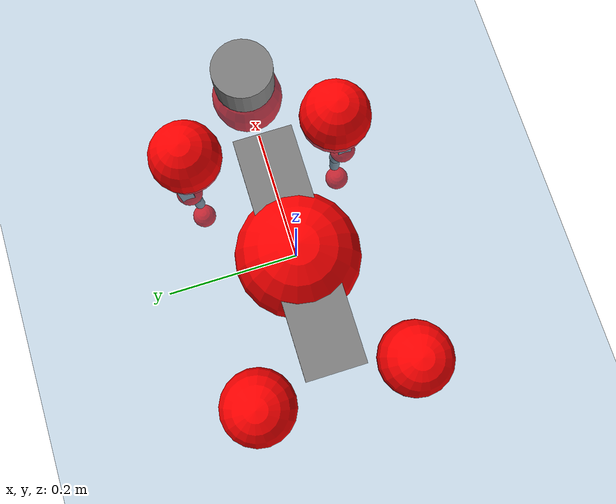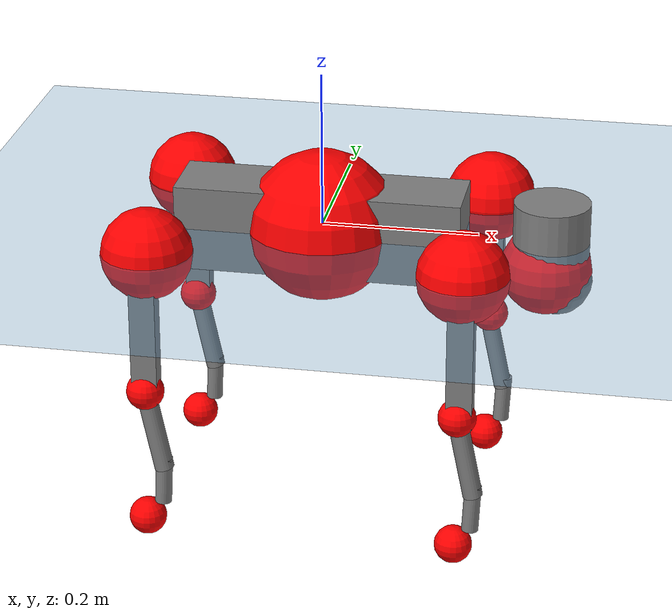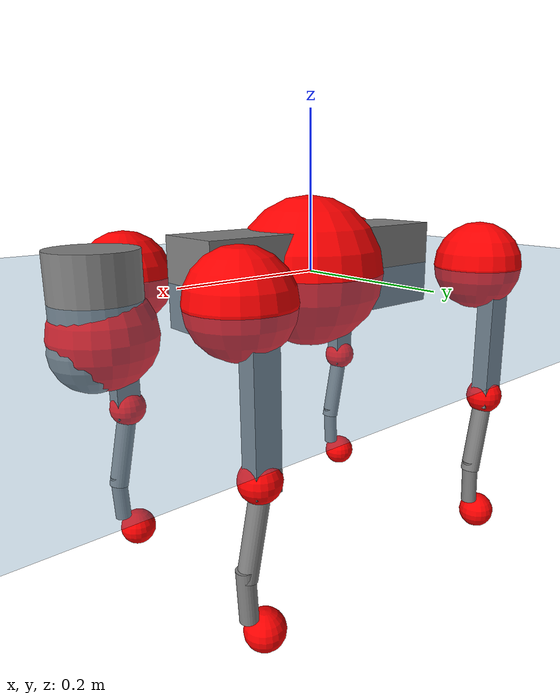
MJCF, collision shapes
<mujoco model="go2">
  <compiler angle="radian" assetdir="assets" balanceinertia="true" inertiafromgeom="false"/>

  <option timestep="0.005" density="1.2" viscosity="2e-05"/>

  <size nkey="1"/>

  <visual>
    <quality shadowsize="8192"/>
    <map shadowclip="0.5"/>
  </visual>

  <default>
    <default class="/">
      <geom contype="0" conaffinity="0" group="1" solref="-1000 -80"/>
      <site size="0.01 0.005 0.005" group="5"/>
      <general forcelimited="true" biastype="affine" gainprm="20" biasprm="0 -20 -0.5"/>
      <default class="go2">
        <joint armature="0.01" damping="0.01" frictionloss="0.2"/>
        <geom condim="1" margin="0.001"/>
        <default class="visual">
          <geom type="mesh" group="2"/>
        </default>
        <default class="collision">
          <geom group="3"/>
          <default class="foot">
            <geom size="0.022 0 0" condim="6" priority="1" friction="0.8 0.02 0.01" solimp="0.015 1 0.022"/>
          </default>
        </default>
        <default class="reward_collision_sphere">
          <geom group="5" rgba="1 0 0 1"/>
        </default>
      </default>
    </default>
  </default>

  <asset>
    <texture type="skybox" colorspace="auto" name="//unnamed_texture_0" builtin="gradient" rgb1="0.95 0.95 0.95" rgb2="0.95 0.95 0.95" width="100" height="600"/>
    <texture type="2d" colorspace="auto" name="texplane" builtin="checker" rgb1="0.345 0.575 0.748" rgb2="0.345 0.575 0.748" markrgb="1 1 1" width="512" height="512"/>
    <material name="MatPlane" class="/" texture="texplane" texuniform="true" texrepeat="2 2" specular="0.9"/>
    <material name="metal" class="/" rgba="0.9 0.95 0.95 1"/>
    <material name="black" class="/" rgba="0 0 0 1"/>
    <material name="white" class="/"/>
    <material name="gray" class="/" rgba="0.671705 0.692426 0.77427 1"/>
    <mesh name="base_0" class="/" file="base_0.obj"/>
    <mesh name="base_1" class="/" file="base_1.obj"/>
    <mesh name="base_2" class="/" file="base_2.obj"/>
    <mesh name="base_3" class="/" file="base_3.obj"/>
    <mesh name="base_4" class="/" file="base_4.obj"/>
    <mesh name="hip_0" class="/" file="hip_0.obj"/>
    <mesh name="hip_1" class="/" file="hip_1.obj"/>
    <mesh name="thigh_0" class="/" file="thigh_0.obj"/>
    <mesh name="thigh_1" class="/" file="thigh_1.obj"/>
    <mesh name="thigh_mirror_0" class="/" file="thigh_mirror_0.obj"/>
    <mesh name="thigh_mirror_1" class="/" file="thigh_mirror_1.obj"/>
    <mesh name="calf_0" class="/" file="calf_0.obj"/>
    <mesh name="calf_1" class="/" file="calf_1.obj"/>
    <mesh name="calf_mirror_0" class="/" file="calf_mirror_0.obj"/>
    <mesh name="calf_mirror_1" class="/" file="calf_mirror_1.obj"/>
    <mesh name="foot" class="/" file="foot.obj"/>
  </asset>

  <worldbody>
    <geom name="floor" class="/" size="100 100 0.125" type="plane" group="0" material="MatPlane"/>
    <light name="toplight_shadow" class="/" pos="0 0 5" dir="0.0990148 0.0990148 -0.990148" type="directional" ambient="0.04 0.04 0.04" diffuse="0.55 0.55 0.55" specular="0.12 0.12 0.12"/>
    <light name="toplight_fill" class="/" pos="0 0 5" dir="0.0990148 0.0990148 -0.990148" type="directional" castshadow="false" ambient="0.04 0.04 0.04" diffuse="0.3 0.3 0.3" specular="0.08 0.08 0.08"/>
    <body name="trunk" childclass="go2" pos="0.000276869 -0.00266326 -0.000372708" quat="1 1.23794e-05 -1.95866e-05 6.08857e-07">
      <inertial pos="0.0214614 -0.00289725 -0.00463965" quat="-0.00913147 0.709065 0.00122411 0.705083" mass="6.26763" diaginertia="0.120105 0.116904 0.0109291"/>
      <joint name="//unnamed_joint_0" type="free" armature="0" damping="0" frictionloss="0"/>
      <geom name="//unnamed_geom_1" class="visual" material="black" mesh="base_0"/>
      <geom name="//unnamed_geom_2" class="visual" material="black" mesh="base_1"/>
      <geom name="//unnamed_geom_3" class="visual" material="black" mesh="base_2"/>
      <geom name="//unnamed_geom_4" class="visual" material="white" mesh="base_3"/>
      <geom name="//unnamed_geom_5" class="visual" material="gray" mesh="base_4"/>
      <geom name="trunk_1" class="collision" size="0.183083 0.0455031 0.0554797" type="box"/>
      <geom name="trunk_2" class="collision" size="0.0486664 0.0437998" pos="0.292855 0 0.00852136" type="cylinder"/>
      <geom name="trunk_3" class="collision" size="0.0457464" pos="0.301075 0 -0.0511282"/>
      <geom name="//unnamed_geom_9" class="reward_collision_sphere" size="0.0973328"/>
      <geom name="//unnamed_geom_10" class="reward_collision_sphere" size="0.0583997" pos="0.287717 0 -0.0383461"/>
      <site name="imu" pos="-0.013294 0.00845478 0.0227605" size="0.00973328"/>
      <camera name="track" pos="0 -2.08058 0" quat="0.707107 0.707107 0 0" mode="trackcom"/>
      <camera name="ego_camera" pos="0.320599 0 0.0383461" quat="-0.5 -0.5 0.5 0.5"/>
      <body name="FL_hip" pos="0.200458 0.0506534 0.00259385" quat="0.999999 -0.00114584 0.000223148 0.000369151">
        <inertial pos="-0.00452059 0.00229778 0.00139211" quat="0.498005 0.499679 0.506551 0.495699" mass="0.600342" diaginertia="0.00101126 0.000692709 0.00021578"/>
        <joint name="FL_hip_joint" pos="0 0 0" axis="0.999996 0.000368666 -0.00289333" stiffness="0.0145902" range="-1.00499 1.07566" armature="0.00949895" damping="0" frictionloss="0.216986"/>
        <geom name="//unnamed_geom_11" class="visual" material="metal" mesh="hip_0"/>
        <geom name="//unnamed_geom_12" class="visual" material="gray" mesh="hip_1"/>
        <geom name="//unnamed_geom_13" class="collision" size="0.0447731 0.0194666" pos="0 0.0832231 0" quat="0.707107 0.707107 0 0" type="cylinder"/>
        <geom name="//unnamed_geom_14" class="reward_collision_sphere" size="0.0583997" pos="0 0.0728202 0"/>
        <body name="FL_thigh" pos="2.64503e-05 0.101524 0.00107945" quat="0.999999 -0.000106871 0.00131601 0.000404892">
          <inertial pos="-0.0014686 -0.0211969 -0.0288847" quat="0.834786 0.0887467 -0.0110975 0.543261" mass="1.06131" diaginertia="0.00680106 0.00715903 0.000398664"/>
          <joint name="FL_thigh_joint" pos="0 0 0" axis="0.0186901 0.999825 -0.000545125" stiffness="0.00644737" range="-1.54492 3.54434" armature="0.0110742" damping="0" frictionloss="0.195799"/>
          <geom name="//unnamed_geom_15" class="visual" material="metal" mesh="thigh_0"/>
          <geom name="//unnamed_geom_16" class="visual" material="gray" mesh="thigh_1"/>
          <geom name="//unnamed_geom_17" class="collision" size="0.103659 0.0119233 0.0165466" pos="0 0 -0.0907525" quat="0.707107 0 0.707107 0" type="box"/>
          <body name="FL_calf" pos="0.000649682 -0.00301892 -0.181988" quat="1 0.000650681 -0.000422758 -5.15106e-06">
            <inertial pos="0.00872908 -0.000529246 -0.122512" quat="0.710305 0.000144471 -0.00475886 0.703878" mass="0.224184" diaginertia="0.00164659 0.00183672 2.30457e-05"/>
            <joint name="FL_calf_joint" pos="0 0 0" axis="0.00285198 0.999983 -0.00517413" range="-2.77195 -0.836569" armature="0.00871849" damping="0.00316703" frictionloss="0.194371"/>
            <geom name="//unnamed_geom_18" class="visual" material="gray" mesh="calf_0"/>
            <geom name="//unnamed_geom_19" class="visual" material="black" mesh="calf_1"/>
            <geom name="FL_calf0" class="collision" size="0.0116799 0.0583997" pos="0.00822048 0 -0.0511282" quat="0.994493 0 -0.104807 0" type="cylinder"/>
            <geom name="//unnamed_geom_21" class="collision" size="0.0107066 0.0316332" pos="0.0205512 0 -0.126116" quat="0.999688 0 0.0249974 0" type="cylinder"/>
            <geom name="//unnamed_geom_22" class="visual" pos="0 0 -0.181505" quat="1 0 0 0" material="black" mesh="foot"/>
            <geom name="FL_foot" class="foot" size="0.0160674" pos="-0.00205512 0 -0.181505"/>
            <geom name="//unnamed_geom_24" class="reward_collision_sphere" size="0.0243332"/>
            <geom name="//unnamed_geom_25" class="reward_collision_sphere" size="0.0243332" pos="-0.00205512 0 -0.181505"/>
            <site name="FL_foot" class="foot" pos="-0.00205512 0 -0.181505" size="0.00973328"/>
          </body>
        </body>
      </body>
      <body name="FR_hip" pos="0.198171 -0.0502988 -0.00234392" quat="1 0.000269335 0.000120049 -5.28213e-05">
        <inertial pos="-0.00506119 -0.0029907 -0.000890459" quat="0.498177 0.504952 0.499765 0.497069" mass="0.601344" diaginertia="0.00101464 0.000703615 0.000222202"/>
        <joint name="FR_hip_joint" pos="0 0 0" axis="0.999944 -0.0105204 -0.00087873" range="-1.04796 1.04654" armature="0.00946588" damping="0.0120536" frictionloss="0.194463"/>
        <geom name="//unnamed_geom_26" class="visual" pos="0 1.63911e-09 7.03048e-08" quat="4.63268e-05 1 0 0" material="metal" mesh="hip_0"/>
        <geom name="//unnamed_geom_27" class="visual" pos="0 2.65719e-09 -1.73891e-07" quat="4.63268e-05 1 0 0" material="gray" mesh="hip_1"/>
        <geom name="//unnamed_geom_28" class="collision" size="0.0447731 0.0194666" pos="0 -0.0832231 0" quat="0.707107 0.707107 0 0" type="cylinder"/>
        <geom name="//unnamed_geom_29" class="reward_collision_sphere" size="0.0583997" pos="0 -0.0728202 0"/>
        <body name="FR_thigh" pos="0.00278522 -0.0973238 0.00272972" quat="1 -0.00020874 0.000120104 -0.000562988">
          <inertial pos="-0.00341839 0.0208242 -0.0279012" quat="0.557937 -0.0187244 0.0787341 0.825928" mass="1.13265" diaginertia="0.00703323 0.00735479 0.000407142"/>
          <joint name="FR_thigh_joint" pos="0 0 0" axis="0.000793289 -0.999997 -0.00249165" stiffness="0.000175368" range="-3.54218 1.57257" armature="0.00944768" damping="0.0109092" frictionloss="0.195659"/>
          <geom name="//unnamed_geom_30" class="visual" material="metal" mesh="thigh_mirror_0"/>
          <geom name="//unnamed_geom_31" class="visual" material="gray" mesh="thigh_mirror_1"/>
          <geom name="//unnamed_geom_32" class="collision" size="0.103659 0.0119233 0.0165466" pos="0 0 -0.0907525" quat="0.707107 0 0.707107 0" type="box"/>
          <body name="FR_calf" pos="-0.002923 -0.000769295 -0.183156" quat="0.999999 -0.000668463 -0.000868774 -0.000858113">
            <inertial pos="0.00702293 0.000771447 -0.118575" quat="0.702853 -0.0127195 -0.00393623 0.71121" mass="0.221366" diaginertia="0.0016839 0.00177479 2.3745e-05"/>
            <joint name="FR_calf_joint" pos="0 0 0" axis="-0.000628433 -0.999926 -0.0121325" range="0.815993 2.72986" armature="0.0109648" damping="0.0229038" frictionloss="0.16769"/>
            <geom name="//unnamed_geom_33" class="visual" material="gray" mesh="calf_mirror_0"/>
            <geom name="//unnamed_geom_34" class="visual" material="black" mesh="calf_mirror_1"/>
            <geom name="FR_calf0" class="collision" size="0.0126533 0.0583997" pos="0.0102756 0 -0.0511282" quat="0.995004 0 -0.0998334 0" type="cylinder"/>
            <geom name="//unnamed_geom_36" class="collision" size="0.0107066 0.0316332" pos="0.0205512 0 -0.126116" quat="0.999688 0 0.0249974 0" type="cylinder"/>
            <geom name="//unnamed_geom_37" class="visual" pos="0 0 -0.181505" quat="1 0 0 0" material="black" mesh="foot"/>
            <geom name="FR_foot" class="foot" size="0.0204779" pos="-0.00205512 0 -0.181505"/>
            <geom name="//unnamed_geom_39" class="reward_collision_sphere" size="0.0243332"/>
            <geom name="//unnamed_geom_40" class="reward_collision_sphere" size="0.0243332" pos="-0.00205512 0 -0.181505"/>
            <site name="FR_foot" class="foot" pos="-0.00205512 0 -0.181505" size="0.00973328"/>
          </body>
        </body>
      </body>
      <body name="RL_hip" pos="-0.198929 0.0496818 0.00162677" quat="1 0.000120806 -0.000153248 0.000112629">
        <inertial pos="0.00517309 -0.000459176 0.00176406" quat="0.505357 0.498302 0.499009 0.497292" mass="0.625422" diaginertia="0.00101627 0.000731836 0.000217528"/>
        <joint name="RL_hip_joint" pos="0 0 0" axis="-0.999846 0.0152099 0.00872659" range="-1.06521 1.03032" armature="0.00980147" damping="0.0136365" frictionloss="0.184255"/>
        <geom name="//unnamed_geom_41" class="visual" pos="-1.52822e-09 0 -2.99566e-07" quat="4.63268e-05 0 1 0" material="metal" mesh="hip_0"/>
        <geom name="//unnamed_geom_42" class="visual" pos="-2.47742e-09 0 -2.65672e-07" quat="4.63268e-05 0 1 0" material="gray" mesh="hip_1"/>
        <geom name="//unnamed_geom_43" class="collision" size="0.0447731 0.0194666" pos="0 0.0832231 0" quat="0.707107 0.707107 0 0" type="cylinder"/>
        <geom name="//unnamed_geom_44" class="reward_collision_sphere" size="0.0583997" pos="0 0.0728202 0"/>
        <body name="RL_thigh" pos="-0.00183535 0.0994962 -0.00163093" quat="1 0.000154956 -0.000383191 -0.000318309">
          <inertial pos="-0.0041278 -0.0224644 -0.0306514" quat="0.829749 0.0929224 -0.0230776 0.549864" mass="1.09453" diaginertia="0.00689335 0.00717962 0.000397441"/>
          <joint name="RL_thigh_joint" pos="0 0 0" axis="0.000151342 1 -0.000163716" stiffness="0.00428702" range="-0.575275 4.57554" armature="0.00961976" damping="0" frictionloss="0.19847"/>
          <geom name="//unnamed_geom_45" class="visual" material="metal" mesh="thigh_0"/>
          <geom name="//unnamed_geom_46" class="visual" material="gray" mesh="thigh_1"/>
          <geom name="//unnamed_geom_47" class="collision" size="0.103659 0.0119233 0.0165466" pos="0 0 -0.0907525" quat="0.707107 0 0.707107 0" type="box"/>
          <body name="RL_calf" pos="-0.00173952 -0.0028411 -0.181868" quat="1 -0.000189417 -0.00020888 -0.000438108">
            <inertial pos="0.00669965 -0.000658383 -0.119478" quat="0.710252 0.000443636 -0.0043859 0.703933" mass="0.233473" diaginertia="0.00180864 0.00182051 2.44726e-05"/>
            <joint name="RL_calf_joint" pos="0 0 0" axis="0.0126978 0.999919 -0.000409545" stiffness="0.00138114" range="-2.67221 -0.889076" armature="0.0100525" damping="4.92123e-05" frictionloss="0.190925"/>
            <geom name="//unnamed_geom_48" class="visual" material="gray" mesh="calf_0"/>
            <geom name="//unnamed_geom_49" class="visual" material="black" mesh="calf_1"/>
            <geom name="RL_calf0" class="collision" size="0.0126533 0.0583997" pos="0.0102756 0 -0.0511282" quat="0.995004 0 -0.0998334 0" type="cylinder"/>
            <geom name="//unnamed_geom_51" class="collision" size="0.0107066 0.0316332" pos="0.0205512 0 -0.126116" quat="0.999688 0 0.0249974 0" type="cylinder"/>
            <geom name="//unnamed_geom_52" class="visual" pos="0 0 -0.181505" quat="1 0 0 0" material="black" mesh="foot"/>
            <geom name="RL_foot" class="foot" size="0.0190798" pos="-0.00205512 0 -0.181505"/>
            <geom name="//unnamed_geom_54" class="reward_collision_sphere" size="0.0243332"/>
            <geom name="//unnamed_geom_55" class="reward_collision_sphere" size="0.0243332" pos="-0.00205512 0 -0.181505"/>
            <site name="RL_foot" class="foot" pos="-0.00205512 0 -0.181505" size="0.00973328"/>
          </body>
        </body>
      </body>
      <body name="RR_hip" pos="-0.199641 -0.0485169 -0.00324391" quat="0.999999 -0.0011475 0.000284904 0.00049744">
        <inertial pos="0.0046328 0.000881306 -0.00234387" quat="0.496532 0.49954 0.499966 0.503934" mass="0.641724" diaginertia="0.00106829 0.000743282 0.000227775"/>
        <joint name="RR_hip_joint" pos="0 0 0" axis="-0.999933 0.00724627 -0.00906937" stiffness="0.00106151" range="-1.02952 0.992825" armature="0.00971124" damping="0.00347113" frictionloss="0.18885"/>
        <geom name="//unnamed_geom_56" class="visual" pos="1.52866e-09 1.63911e-09 -3.69871e-07" quat="2.14617e-09 4.63268e-05 4.63268e-05 -1" material="metal" mesh="hip_0"/>
        <geom name="//unnamed_geom_57" class="visual" pos="2.47633e-09 2.65719e-09 -9.17817e-08" quat="2.14617e-09 4.63268e-05 4.63268e-05 -1" material="gray" mesh="hip_1"/>
        <geom name="//unnamed_geom_58" class="collision" size="0.0447731 0.0194666" pos="0 -0.0832231 0" quat="0.707107 0.707107 0 0" type="cylinder"/>
        <geom name="//unnamed_geom_59" class="reward_collision_sphere" size="0.0583997" pos="0 -0.0728202 0"/>
        <body name="RR_thigh" pos="0.000191078 -0.0969748 0.00124432" quat="0.999999 -0.000281372 0.00110808 0.000931745">
          <inertial pos="-0.00375552 0.0205115 -0.0259816" quat="0.549389 -0.0229938 0.0817675 0.831238" mass="1.04165" diaginertia="0.00663143 0.00699589 0.000385322"/>
          <joint name="RR_thigh_joint" pos="0 0 0" axis="-0.000933747 -0.999978 -0.00651348" range="-4.55673 0.559038" armature="0.00959796" damping="0.01665" frictionloss="0.184185"/>
          <geom name="//unnamed_geom_60" class="visual" material="metal" mesh="thigh_mirror_0"/>
          <geom name="//unnamed_geom_61" class="visual" material="gray" mesh="thigh_mirror_1"/>
          <geom name="//unnamed_geom_62" class="collision" size="0.103659 0.0119233 0.0165466" pos="0 0 -0.0907525" quat="0.707107 0 0.707107 0" type="box"/>
          <body name="RR_calf" pos="-0.00136672 -0.000696314 -0.181374" quat="1 0.000125073 -0.000531947 8.82206e-06">
            <inertial pos="0.00839889 0.000760813 -0.119682" quat="0.703706 -0.00421158 0.000427679 0.710479" mass="0.223286" diaginertia="0.00177258 0.00180219 2.36574e-05"/>
            <joint name="RR_calf_joint" pos="0 0 0" axis="-0.00699288 -0.999969 0.0036617" range="0.781412 2.77988" armature="0.00837454" damping="0.0111192" frictionloss="0.19607"/>
            <geom name="//unnamed_geom_63" class="visual" material="gray" mesh="calf_mirror_0"/>
            <geom name="//unnamed_geom_64" class="visual" material="black" mesh="calf_mirror_1"/>
            <geom name="RR_calf0" class="collision" size="0.0126533 0.0583997" pos="0.0102756 0 -0.0511282" quat="0.995004 0 -0.0998334 0" type="cylinder"/>
            <geom name="//unnamed_geom_66" class="collision" size="0.0107066 0.0316332" pos="0.0205512 0 -0.126116" quat="0.999688 0 0.0249974 0" type="cylinder"/>
            <geom name="//unnamed_geom_67" class="visual" pos="0 0 -0.181505" quat="1 0 0 0" material="black" mesh="foot"/>
            <geom name="RR_foot" class="foot" size="0.0195099" pos="-0.00205512 0 -0.181505"/>
            <geom name="//unnamed_geom_69" class="reward_collision_sphere" size="0.0243332"/>
            <geom name="//unnamed_geom_70" class="reward_collision_sphere" size="0.0243332" pos="-0.00205512 0 -0.181505"/>
            <site name="RR_foot" class="foot" pos="-0.00205512 0 -0.181505" size="0.00973328"/>
          </body>
        </body>
      </body>
    </body>
  </worldbody>

  <contact>
    <pair class="/" geom1="floor" geom2="FL_foot" name="//unnamed_contact_0"/>
    <pair class="/" geom1="floor" geom2="FR_foot" name="//unnamed_contact_1"/>
    <pair class="/" geom1="floor" geom2="RL_foot" name="//unnamed_contact_2"/>
    <pair class="/" geom1="floor" geom2="RR_foot" name="//unnamed_contact_3"/>
  </contact>

  <actuator>
    <general name="FL_hip" class="/" joint="FL_hip_joint" forcerange="-25.0223 25.0223" gainprm="20.8452" biasprm="0 -20.8452 -0.485137"/>
    <general name="FL_thigh" class="/" joint="FL_thigh_joint" forcerange="-21.2305 21.2305" gainprm="20.8452" biasprm="0 -20.8452 -0.485137"/>
    <general name="FL_calf" class="/" joint="FL_calf_joint" forcerange="-44.9043 44.9043" gainprm="20.8452" biasprm="0 -20.8452 -0.485137"/>
    <general name="FR_hip" class="/" joint="FR_hip_joint" forcerange="-25.3126 25.3126" gainprm="20.8452" biasprm="0 -20.8452 -0.485137"/>
    <general name="FR_thigh" class="/" joint="FR_thigh_joint" forcerange="-25.3056 25.3056" gainprm="20.8452" biasprm="0 -20.8452 -0.485137"/>
    <general name="FR_calf" class="/" joint="FR_calf_joint" forcerange="-47.7806 47.7806" gainprm="20.8452" biasprm="0 -20.8452 -0.485137"/>
    <general name="RL_hip" class="/" joint="RL_hip_joint" forcerange="-23.8242 23.8242" gainprm="20.8452" biasprm="0 -20.8452 -0.485137"/>
    <general name="RL_thigh" class="/" joint="RL_thigh_joint" forcerange="-22.2279 22.2279" gainprm="20.8452" biasprm="0 -20.8452 -0.485137"/>
    <general name="RL_calf" class="/" joint="RL_calf_joint" forcerange="-41.3617 41.3617" gainprm="20.8452" biasprm="0 -20.8452 -0.485137"/>
    <general name="RR_hip" class="/" joint="RR_hip_joint" forcerange="-20.9372 20.9372" gainprm="20.8452" biasprm="0 -20.8452 -0.485137"/>
    <general name="RR_thigh" class="/" joint="RR_thigh_joint" forcerange="-23.8154 23.8154" gainprm="20.8452" biasprm="0 -20.8452 -0.485137"/>
    <general name="RR_calf" class="/" joint="RR_calf_joint" forcerange="-44.0227 44.0227" gainprm="20.8452" biasprm="0 -20.8452 -0.485137"/>
  </actuator>

  <sensor>
    <gyro site="imu" name="imu_angular_velocity"/>
    <velocimeter site="imu" name="imu_linear_velocity"/>
    <framelinvel objtype="site" objname="FL_foot" name="FL_foot_global_linear_velocity"/>
    <framelinvel objtype="site" objname="FR_foot" name="FR_foot_global_linear_velocity"/>
    <framelinvel objtype="site" objname="RL_foot" name="RL_foot_global_linear_velocity"/>
    <framelinvel objtype="site" objname="RR_foot" name="RR_foot_global_linear_velocity"/>
  </sensor>

  <keyframe>
    <key name="home" qpos="0 0 0.325 1 0 0 0 0.1 0.8 -1.5 -0.1 -0.8 1.5 -0.1 0.8 -1.5 0.1 -0.8 1.5"/>
  </keyframe>
</mujoco>
